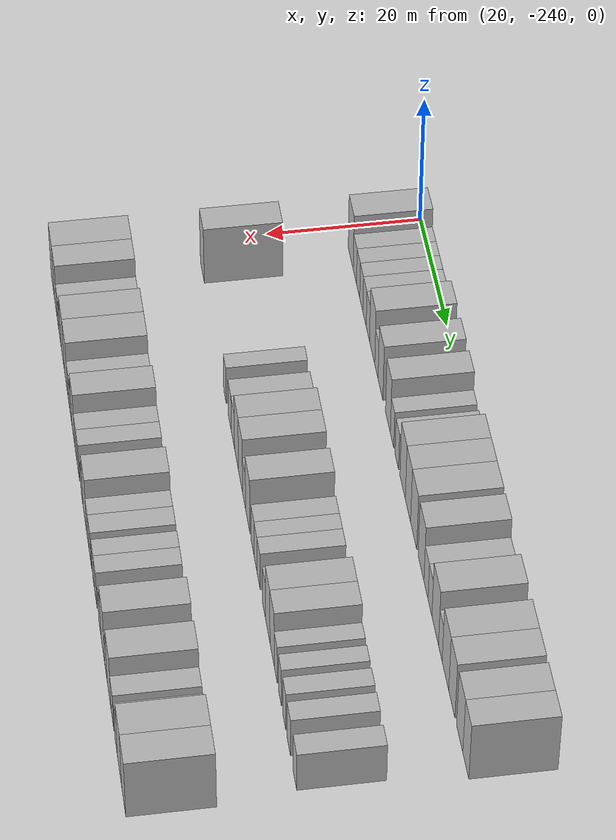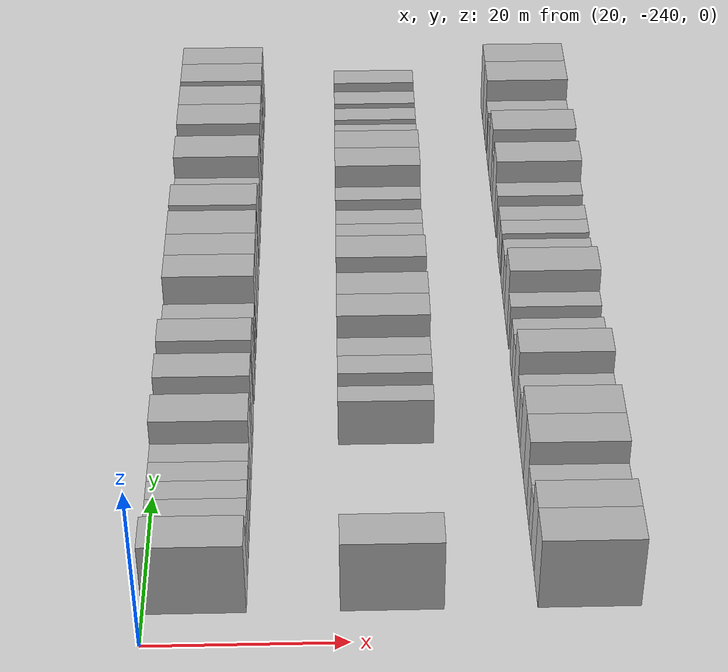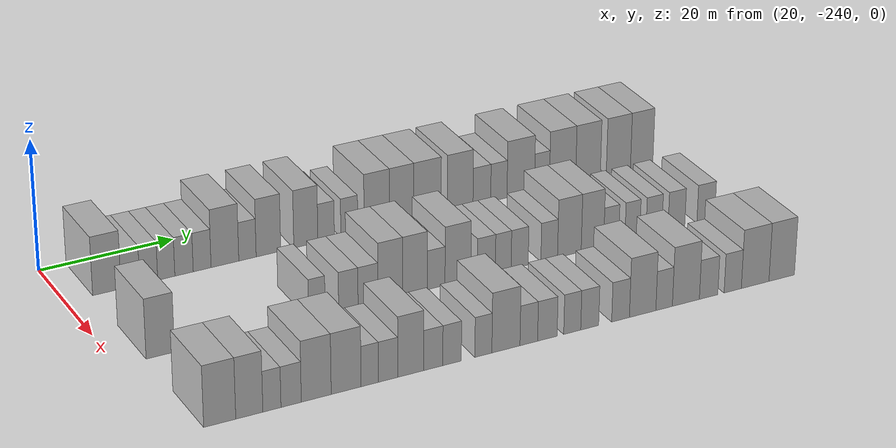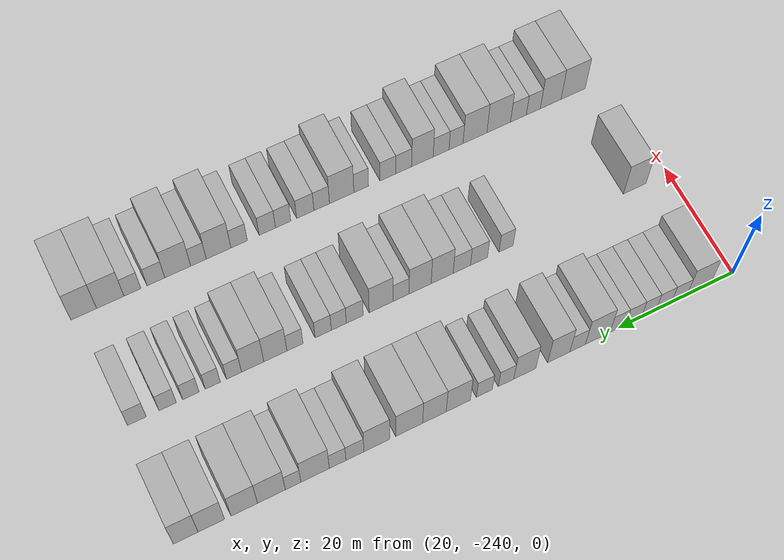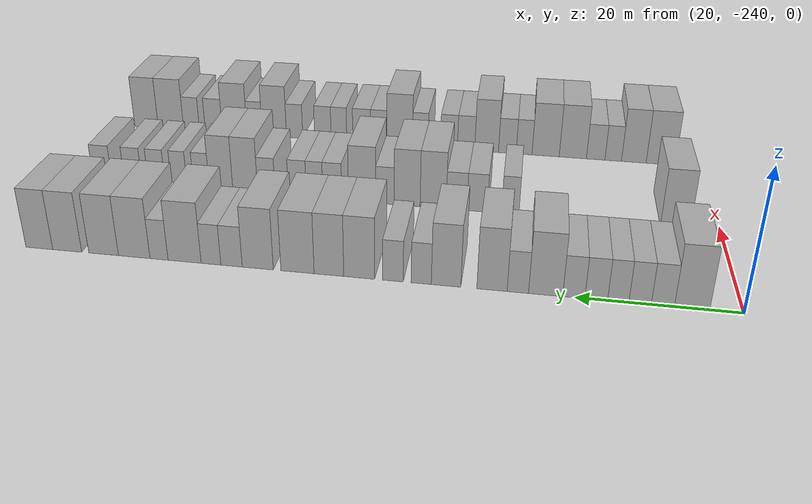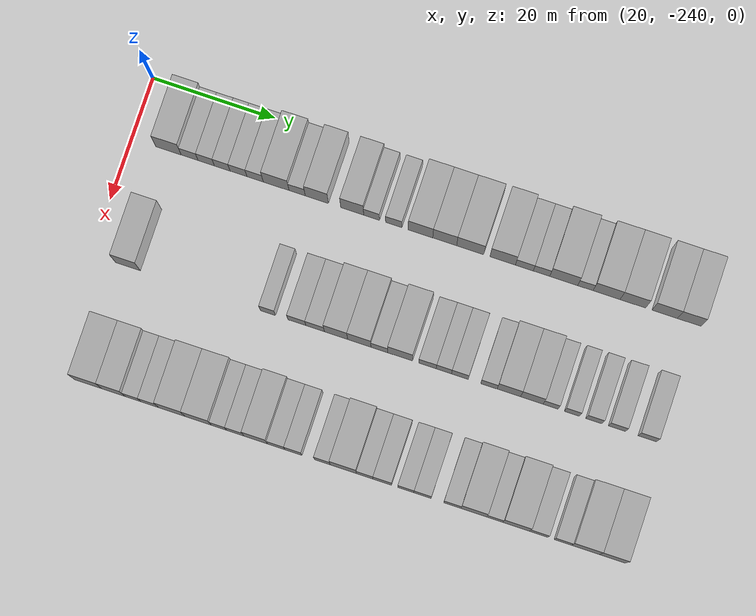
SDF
<sdf version="1.6">
 <world name="default">
  <model name="building_1">
   <static>1</static>
   <pose>25.0000 -233.9271 0 0.000000 0.000000 0.000000</pose>
   <link name="link">
    <pose>0 0 4.50 0 0 0</pose>
    <collision name="collision"><geometry><box><size>10.0000 4.1458 9.0000</size></box></geometry></collision>
    <visual name="visual">
     <cast_shadows>0</cast_shadows>
     <geometry><box><size>10.0000 4.1458 9.0000</size></box></geometry>
     <material>
      <script>
       <uri>model://HANNAS_wall/materials/scripts</uri>
       <uri>model://HANNAS_wall/materials/textures</uri>
       <name>vrc/HANNAS_wall</name>
      </script>
     </material>
    </visual>
   </link>
  </model>
  <model name="building_2">
   <static>1</static>
   <pose>25.0000 -230.4867 0 0.000000 0.000000 0.000000</pose>
   <link name="link">
    <pose>0 0 3.00 0 0 0</pose>
    <collision name="collision"><geometry><box><size>10.0000 2.7349 6.0000</size></box></geometry></collision>
    <visual name="visual">
     <cast_shadows>0</cast_shadows>
     <geometry><box><size>10.0000 2.7349 6.0000</size></box></geometry>
     <material>
      <script>
       <uri>model://HANNAS_wall/materials/scripts</uri>
       <uri>model://HANNAS_wall/materials/textures</uri>
       <name>vrc/HANNAS_wall</name>
      </script>
     </material>
    </visual>
   </link>
  </model>
  <model name="building_3">
   <static>1</static>
   <pose>25.0000 -227.7902 0 0.000000 0.000000 0.000000</pose>
   <link name="link">
    <pose>0 0 3.00 0 0 0</pose>
    <collision name="collision"><geometry><box><size>10.0000 2.6582 6.0000</size></box></geometry></collision>
    <visual name="visual">
     <cast_shadows>0</cast_shadows>
     <geometry><box><size>10.0000 2.6582 6.0000</size></box></geometry>
     <material>
      <script>
       <uri>model://HANNAS_wall/materials/scripts</uri>
       <uri>model://HANNAS_wall/materials/textures</uri>
       <name>vrc/HANNAS_wall</name>
      </script>
     </material>
    </visual>
   </link>
  </model>
  <model name="building_4">
   <static>1</static>
   <pose>25.0000 -225.1903 0 0.000000 0.000000 0.000000</pose>
   <link name="link">
    <pose>0 0 3.00 0 0 0</pose>
    <collision name="collision"><geometry><box><size>10.0000 2.5416 6.0000</size></box></geometry></collision>
    <visual name="visual">
     <cast_shadows>0</cast_shadows>
     <geometry><box><size>10.0000 2.5416 6.0000</size></box></geometry>
     <material>
      <script>
       <uri>model://HANNAS_wall/materials/scripts</uri>
       <uri>model://HANNAS_wall/materials/textures</uri>
       <name>vrc/HANNAS_wall</name>
      </script>
     </material>
    </visual>
   </link>
  </model>
  <model name="building_5">
   <static>1</static>
   <pose>25.0000 -222.5512 0 0.000000 0.000000 0.000000</pose>
   <link name="link">
    <pose>0 0 3.00 0 0 0</pose>
    <collision name="collision"><geometry><box><size>10.0000 2.7365 6.0000</size></box></geometry></collision>
    <visual name="visual">
     <cast_shadows>0</cast_shadows>
     <geometry><box><size>10.0000 2.7365 6.0000</size></box></geometry>
     <material>
      <script>
       <uri>model://HANNAS_wall/materials/scripts</uri>
       <uri>model://HANNAS_wall/materials/textures</uri>
       <name>vrc/HANNAS_wall</name>
      </script>
     </material>
    </visual>
   </link>
  </model>
  <model name="building_6">
   <static>1</static>
   <pose>25.0000 -219.8457 0 0.000000 0.000000 0.000000</pose>
   <link name="link">
    <pose>0 0 3.00 0 0 0</pose>
    <collision name="collision"><geometry><box><size>10.0000 2.6745 6.0000</size></box></geometry></collision>
    <visual name="visual">
     <cast_shadows>0</cast_shadows>
     <geometry><box><size>10.0000 2.6745 6.0000</size></box></geometry>
     <material>
      <script>
       <uri>model://HANNAS_wall/materials/scripts</uri>
       <uri>model://HANNAS_wall/materials/textures</uri>
       <name>vrc/HANNAS_wall</name>
      </script>
     </material>
    </visual>
   </link>
  </model>
  <model name="building_7">
   <static>1</static>
   <pose>25.0000 -216.4203 0 0.000000 0.000000 0.000000</pose>
   <link name="link">
    <pose>0 0 4.50 0 0 0</pose>
    <collision name="collision"><geometry><box><size>10.0000 4.1763 9.0000</size></box></geometry></collision>
    <visual name="visual">
     <cast_shadows>0</cast_shadows>
     <geometry><box><size>10.0000 4.1763 9.0000</size></box></geometry>
     <material>
      <script>
       <uri>model://HANNAS_wall/materials/scripts</uri>
       <uri>model://HANNAS_wall/materials/textures</uri>
       <name>vrc/HANNAS_wall</name>
      </script>
     </material>
    </visual>
   </link>
  </model>
  <model name="building_8">
   <static>1</static>
   <pose>25.0000 -213.0158 0 0.000000 0.000000 0.000000</pose>
   <link name="link">
    <pose>0 0 3.00 0 0 0</pose>
    <collision name="collision"><geometry><box><size>10.0000 2.6328 6.0000</size></box></geometry></collision>
    <visual name="visual">
     <cast_shadows>0</cast_shadows>
     <geometry><box><size>10.0000 2.6328 6.0000</size></box></geometry>
     <material>
      <script>
       <uri>model://HANNAS_wall/materials/scripts</uri>
       <uri>model://HANNAS_wall/materials/textures</uri>
       <name>vrc/HANNAS_wall</name>
      </script>
     </material>
    </visual>
   </link>
  </model>
  <model name="building_9">
   <static>1</static>
   <pose>25.0000 -209.8231 0 0.000000 0.000000 0.000000</pose>
   <link name="link">
    <pose>0 0 4.50 0 0 0</pose>
    <collision name="collision"><geometry><box><size>10.0000 3.7524 9.0000</size></box></geometry></collision>
    <visual name="visual">
     <cast_shadows>0</cast_shadows>
     <geometry><box><size>10.0000 3.7524 9.0000</size></box></geometry>
     <material>
      <script>
       <uri>model://HANNAS_wall/materials/scripts</uri>
       <uri>model://HANNAS_wall/materials/textures</uri>
       <name>vrc/HANNAS_wall</name>
      </script>
     </material>
    </visual>
   </link>
  </model>
  <model name="building_10">
   <static>1</static>
   <pose>25.0000 -204.0901 0 0.000000 0.000000 0.000000</pose>
   <link name="link">
    <pose>0 0 4.50 0 0 0</pose>
    <collision name="collision"><geometry><box><size>10.0000 3.7137 9.0000</size></box></geometry></collision>
    <visual name="visual">
     <cast_shadows>0</cast_shadows>
     <geometry><box><size>10.0000 3.7137 9.0000</size></box></geometry>
     <material>
      <script>
       <uri>model://HANNAS_wall/materials/scripts</uri>
       <uri>model://HANNAS_wall/materials/textures</uri>
       <name>vrc/HANNAS_wall</name>
      </script>
     </material>
    </visual>
   </link>
  </model>
  <model name="building_11">
   <static>1</static>
   <pose>25.0000 -200.9545 0 0.000000 0.000000 0.000000</pose>
   <link name="link">
    <pose>0 0 3.00 0 0 0</pose>
    <collision name="collision"><geometry><box><size>10.0000 2.5574 6.0000</size></box></geometry></collision>
    <visual name="visual">
     <cast_shadows>0</cast_shadows>
     <geometry><box><size>10.0000 2.5574 6.0000</size></box></geometry>
     <material>
      <script>
       <uri>model://HANNAS_wall/materials/scripts</uri>
       <uri>model://HANNAS_wall/materials/textures</uri>
       <name>vrc/HANNAS_wall</name>
      </script>
     </material>
    </visual>
   </link>
  </model>
  <model name="building_12">
   <static>1</static>
   <pose>25.0000 -197.3537 0 0.000000 0.000000 0.000000</pose>
   <link name="link">
    <pose>0 0 3.00 0 0 0</pose>
    <collision name="collision"><geometry><box><size>10.0000 2.6442 6.0000</size></box></geometry></collision>
    <visual name="visual">
     <cast_shadows>0</cast_shadows>
     <geometry><box><size>10.0000 2.6442 6.0000</size></box></geometry>
     <material>
      <script>
       <uri>model://HANNAS_wall/materials/scripts</uri>
       <uri>model://HANNAS_wall/materials/textures</uri>
       <name>vrc/HANNAS_wall</name>
      </script>
     </material>
    </visual>
   </link>
  </model>
  <model name="building_13">
   <static>1</static>
   <pose>25.0000 -193.0420 0 0.000000 0.000000 0.000000</pose>
   <link name="link">
    <pose>0 0 4.50 0 0 0</pose>
    <collision name="collision"><geometry><box><size>10.0000 3.9793 9.0000</size></box></geometry></collision>
    <visual name="visual">
     <cast_shadows>0</cast_shadows>
     <geometry><box><size>10.0000 3.9793 9.0000</size></box></geometry>
     <material>
      <script>
       <uri>model://HANNAS_wall/materials/scripts</uri>
       <uri>model://HANNAS_wall/materials/textures</uri>
       <name>vrc/HANNAS_wall</name>
      </script>
     </material>
    </visual>
   </link>
  </model>
  <model name="building_14">
   <static>1</static>
   <pose>25.0000 -189.1228 0 0.000000 0.000000 0.000000</pose>
   <link name="link">
    <pose>0 0 4.50 0 0 0</pose>
    <collision name="collision"><geometry><box><size>10.0000 3.8592 9.0000</size></box></geometry></collision>
    <visual name="visual">
     <cast_shadows>0</cast_shadows>
     <geometry><box><size>10.0000 3.8592 9.0000</size></box></geometry>
     <material>
      <script>
       <uri>model://HANNAS_wall/materials/scripts</uri>
       <uri>model://HANNAS_wall/materials/textures</uri>
       <name>vrc/HANNAS_wall</name>
      </script>
     </material>
    </visual>
   </link>
  </model>
  <model name="building_15">
   <static>1</static>
   <pose>25.0000 -185.0093 0 0.000000 0.000000 0.000000</pose>
   <link name="link">
    <pose>0 0 4.50 0 0 0</pose>
    <collision name="collision"><geometry><box><size>10.0000 4.3678 9.0000</size></box></geometry></collision>
    <visual name="visual">
     <cast_shadows>0</cast_shadows>
     <geometry><box><size>10.0000 4.3678 9.0000</size></box></geometry>
     <material>
      <script>
       <uri>model://HANNAS_wall/materials/scripts</uri>
       <uri>model://HANNAS_wall/materials/textures</uri>
       <name>vrc/HANNAS_wall</name>
      </script>
     </material>
    </visual>
   </link>
  </model>
  <model name="building_16">
   <static>1</static>
   <pose>25.0000 -179.7618 0 0.000000 0.000000 0.000000</pose>
   <link name="link">
    <pose>0 0 4.50 0 0 0</pose>
    <collision name="collision"><geometry><box><size>10.0000 4.1271 9.0000</size></box></geometry></collision>
    <visual name="visual">
     <cast_shadows>0</cast_shadows>
     <geometry><box><size>10.0000 4.1271 9.0000</size></box></geometry>
     <material>
      <script>
       <uri>model://HANNAS_wall/materials/scripts</uri>
       <uri>model://HANNAS_wall/materials/textures</uri>
       <name>vrc/HANNAS_wall</name>
      </script>
     </material>
    </visual>
   </link>
  </model>
  <model name="building_17">
   <static>1</static>
   <pose>25.0000 -176.2631 0 0.000000 0.000000 0.000000</pose>
   <link name="link">
    <pose>0 0 3.00 0 0 0</pose>
    <collision name="collision"><geometry><box><size>10.0000 2.8704 6.0000</size></box></geometry></collision>
    <visual name="visual">
     <cast_shadows>0</cast_shadows>
     <geometry><box><size>10.0000 2.8704 6.0000</size></box></geometry>
     <material>
      <script>
       <uri>model://HANNAS_wall/materials/scripts</uri>
       <uri>model://HANNAS_wall/materials/textures</uri>
       <name>vrc/HANNAS_wall</name>
      </script>
     </material>
    </visual>
   </link>
  </model>
  <model name="building_18">
   <static>1</static>
   <pose>25.0000 -173.5011 0 0.000000 0.000000 0.000000</pose>
   <link name="link">
    <pose>0 0 3.00 0 0 0</pose>
    <collision name="collision"><geometry><box><size>10.0000 2.6536 6.0000</size></box></geometry></collision>
    <visual name="visual">
     <cast_shadows>0</cast_shadows>
     <geometry><box><size>10.0000 2.6536 6.0000</size></box></geometry>
     <material>
      <script>
       <uri>model://HANNAS_wall/materials/scripts</uri>
       <uri>model://HANNAS_wall/materials/textures</uri>
       <name>vrc/HANNAS_wall</name>
      </script>
     </material>
    </visual>
   </link>
  </model>
  <model name="building_19">
   <static>1</static>
   <pose>25.0000 -169.9264 0 0.000000 0.000000 0.000000</pose>
   <link name="link">
    <pose>0 0 4.50 0 0 0</pose>
    <collision name="collision"><geometry><box><size>10.0000 4.4958 9.0000</size></box></geometry></collision>
    <visual name="visual">
     <cast_shadows>0</cast_shadows>
     <geometry><box><size>10.0000 4.4958 9.0000</size></box></geometry>
     <material>
      <script>
       <uri>model://HANNAS_wall/materials/scripts</uri>
       <uri>model://HANNAS_wall/materials/textures</uri>
       <name>vrc/HANNAS_wall</name>
      </script>
     </material>
    </visual>
   </link>
  </model>
  <model name="building_20">
   <static>1</static>
   <pose>25.0000 -166.4420 0 0.000000 0.000000 0.000000</pose>
   <link name="link">
    <pose>0 0 3.00 0 0 0</pose>
    <collision name="collision"><geometry><box><size>10.0000 2.4730 6.0000</size></box></geometry></collision>
    <visual name="visual">
     <cast_shadows>0</cast_shadows>
     <geometry><box><size>10.0000 2.4730 6.0000</size></box></geometry>
     <material>
      <script>
       <uri>model://HANNAS_wall/materials/scripts</uri>
       <uri>model://HANNAS_wall/materials/textures</uri>
       <name>vrc/HANNAS_wall</name>
      </script>
     </material>
    </visual>
   </link>
  </model>
  <model name="building_21">
   <static>1</static>
   <pose>25.0000 -163.0286 0 0.000000 0.000000 0.000000</pose>
   <link name="link">
    <pose>0 0 4.50 0 0 0</pose>
    <collision name="collision"><geometry><box><size>10.0000 4.3538 9.0000</size></box></geometry></collision>
    <visual name="visual">
     <cast_shadows>0</cast_shadows>
     <geometry><box><size>10.0000 4.3538 9.0000</size></box></geometry>
     <material>
      <script>
       <uri>model://HANNAS_wall/materials/scripts</uri>
       <uri>model://HANNAS_wall/materials/textures</uri>
       <name>vrc/HANNAS_wall</name>
      </script>
     </material>
    </visual>
   </link>
  </model>
  <model name="building_22">
   <static>1</static>
   <pose>25.0000 -158.7846 0 0.000000 0.000000 0.000000</pose>
   <link name="link">
    <pose>0 0 4.50 0 0 0</pose>
    <collision name="collision"><geometry><box><size>10.0000 4.1341 9.0000</size></box></geometry></collision>
    <visual name="visual">
     <cast_shadows>0</cast_shadows>
     <geometry><box><size>10.0000 4.1341 9.0000</size></box></geometry>
     <material>
      <script>
       <uri>model://HANNAS_wall/materials/scripts</uri>
       <uri>model://HANNAS_wall/materials/textures</uri>
       <name>vrc/HANNAS_wall</name>
      </script>
     </material>
    </visual>
   </link>
  </model>
  <model name="building_23">
   <static>1</static>
   <pose>25.0000 -153.6770 0 0.000000 0.000000 0.000000</pose>
   <link name="link">
    <pose>0 0 4.50 0 0 0</pose>
    <collision name="collision"><geometry><box><size>10.0000 4.0810 9.0000</size></box></geometry></collision>
    <visual name="visual">
     <cast_shadows>0</cast_shadows>
     <geometry><box><size>10.0000 4.0810 9.0000</size></box></geometry>
     <material>
      <script>
       <uri>model://HANNAS_wall/materials/scripts</uri>
       <uri>model://HANNAS_wall/materials/textures</uri>
       <name>vrc/HANNAS_wall</name>
      </script>
     </material>
    </visual>
   </link>
  </model>
  <model name="building_24">
   <static>1</static>
   <pose>25.0000 -149.7337 0 0.000000 0.000000 0.000000</pose>
   <link name="link">
    <pose>0 0 4.50 0 0 0</pose>
    <collision name="collision"><geometry><box><size>10.0000 3.8056 9.0000</size></box></geometry></collision>
    <visual name="visual">
     <cast_shadows>0</cast_shadows>
     <geometry><box><size>10.0000 3.8056 9.0000</size></box></geometry>
     <material>
      <script>
       <uri>model://HANNAS_wall/materials/scripts</uri>
       <uri>model://HANNAS_wall/materials/textures</uri>
       <name>vrc/HANNAS_wall</name>
      </script>
     </material>
    </visual>
   </link>
  </model>
  <model name="building_111">
   <static>1</static>
   <pose>44.0000 -233.9798 0 0.000000 0.000000 0.000000</pose>
   <link name="link">
    <pose>0 0 4.50 0 0 0</pose>
    <collision name="collision"><geometry><box><size>10.0000 4.0403 9.0000</size></box></geometry></collision>
    <visual name="visual">
     <cast_shadows>0</cast_shadows>
     <geometry><box><size>10.0000 4.0403 9.0000</size></box></geometry>
     <material>
      <script>
       <uri>model://HANNAS_wall/materials/scripts</uri>
       <uri>model://HANNAS_wall/materials/textures</uri>
       <name>vrc/HANNAS_wall</name>
      </script>
     </material>
    </visual>
   </link>
  </model>
  <model name="building_112">
   <static>1</static>
   <pose>44.0000 -211.3027 0 0.000000 0.000000 0.000000</pose>
   <link name="link">
    <pose>0 0 3.00 0 0 0</pose>
    <collision name="collision"><geometry><box><size>10.0000 2.4380 6.0000</size></box></geometry></collision>
    <visual name="visual">
     <cast_shadows>0</cast_shadows>
     <geometry><box><size>10.0000 2.4380 6.0000</size></box></geometry>
     <material>
      <script>
       <uri>model://HANNAS_wall/materials/scripts</uri>
       <uri>model://HANNAS_wall/materials/textures</uri>
       <name>vrc/HANNAS_wall</name>
      </script>
     </material>
    </visual>
   </link>
  </model>
  <model name="building_113">
   <static>1</static>
   <pose>44.0000 -206.6321 0 0.000000 0.000000 0.000000</pose>
   <link name="link">
    <pose>0 0 3.00 0 0 0</pose>
    <collision name="collision"><geometry><box><size>10.0000 2.9032 6.0000</size></box></geometry></collision>
    <visual name="visual">
     <cast_shadows>0</cast_shadows>
     <geometry><box><size>10.0000 2.9032 6.0000</size></box></geometry>
     <material>
      <script>
       <uri>model://HANNAS_wall/materials/scripts</uri>
       <uri>model://HANNAS_wall/materials/textures</uri>
       <name>vrc/HANNAS_wall</name>
      </script>
     </material>
    </visual>
   </link>
  </model>
  <model name="building_114">
   <static>1</static>
   <pose>44.0000 -203.6907 0 0.000000 0.000000 0.000000</pose>
   <link name="link">
    <pose>0 0 3.00 0 0 0</pose>
    <collision name="collision"><geometry><box><size>10.0000 2.9795 6.0000</size></box></geometry></collision>
    <visual name="visual">
     <cast_shadows>0</cast_shadows>
     <geometry><box><size>10.0000 2.9795 6.0000</size></box></geometry>
     <material>
      <script>
       <uri>model://HANNAS_wall/materials/scripts</uri>
       <uri>model://HANNAS_wall/materials/textures</uri>
       <name>vrc/HANNAS_wall</name>
      </script>
     </material>
    </visual>
   </link>
  </model>
  <model name="building_115">
   <static>1</static>
   <pose>44.0000 -200.3265 0 0.000000 0.000000 0.000000</pose>
   <link name="link">
    <pose>0 0 4.50 0 0 0</pose>
    <collision name="collision"><geometry><box><size>10.0000 3.7490 9.0000</size></box></geometry></collision>
    <visual name="visual">
     <cast_shadows>0</cast_shadows>
     <geometry><box><size>10.0000 3.7490 9.0000</size></box></geometry>
     <material>
      <script>
       <uri>model://HANNAS_wall/materials/scripts</uri>
       <uri>model://HANNAS_wall/materials/textures</uri>
       <name>vrc/HANNAS_wall</name>
      </script>
     </material>
    </visual>
   </link>
  </model>
  <model name="building_116">
   <static>1</static>
   <pose>44.0000 -196.5729 0 0.000000 0.000000 0.000000</pose>
   <link name="link">
    <pose>0 0 4.50 0 0 0</pose>
    <collision name="collision"><geometry><box><size>10.0000 3.7583 9.0000</size></box></geometry></collision>
    <visual name="visual">
     <cast_shadows>0</cast_shadows>
     <geometry><box><size>10.0000 3.7583 9.0000</size></box></geometry>
     <material>
      <script>
       <uri>model://HANNAS_wall/materials/scripts</uri>
       <uri>model://HANNAS_wall/materials/textures</uri>
       <name>vrc/HANNAS_wall</name>
      </script>
     </material>
    </visual>
   </link>
  </model>
  <model name="building_117">
   <static>1</static>
   <pose>44.0000 -193.3460 0 0.000000 0.000000 0.000000</pose>
   <link name="link">
    <pose>0 0 3.00 0 0 0</pose>
    <collision name="collision"><geometry><box><size>10.0000 2.6954 6.0000</size></box></geometry></collision>
    <visual name="visual">
     <cast_shadows>0</cast_shadows>
     <geometry><box><size>10.0000 2.6954 6.0000</size></box></geometry>
     <material>
      <script>
       <uri>model://HANNAS_wall/materials/scripts</uri>
       <uri>model://HANNAS_wall/materials/textures</uri>
       <name>vrc/HANNAS_wall</name>
      </script>
     </material>
    </visual>
   </link>
  </model>
  <model name="building_118">
   <static>1</static>
   <pose>44.0000 -190.0087 0 0.000000 0.000000 0.000000</pose>
   <link name="link">
    <pose>0 0 4.50 0 0 0</pose>
    <collision name="collision"><geometry><box><size>10.0000 3.9793 9.0000</size></box></geometry></collision>
    <visual name="visual">
     <cast_shadows>0</cast_shadows>
     <geometry><box><size>10.0000 3.9793 9.0000</size></box></geometry>
     <material>
      <script>
       <uri>model://HANNAS_wall/materials/scripts</uri>
       <uri>model://HANNAS_wall/materials/textures</uri>
       <name>vrc/HANNAS_wall</name>
      </script>
     </material>
    </visual>
   </link>
  </model>
  <model name="building_119">
   <static>1</static>
   <pose>44.0000 -185.6162 0 0.000000 0.000000 0.000000</pose>
   <link name="link">
    <pose>0 0 3.00 0 0 0</pose>
    <collision name="collision"><geometry><box><size>10.0000 2.8057 6.0000</size></box></geometry></collision>
    <visual name="visual">
     <cast_shadows>0</cast_shadows>
     <geometry><box><size>10.0000 2.8057 6.0000</size></box></geometry>
     <material>
      <script>
       <uri>model://HANNAS_wall/materials/scripts</uri>
       <uri>model://HANNAS_wall/materials/textures</uri>
       <name>vrc/HANNAS_wall</name>
      </script>
     </material>
    </visual>
   </link>
  </model>
  <model name="building_120">
   <static>1</static>
   <pose>44.0000 -182.9791 0 0.000000 0.000000 0.000000</pose>
   <link name="link">
    <pose>0 0 3.00 0 0 0</pose>
    <collision name="collision"><geometry><box><size>10.0000 2.4686 6.0000</size></box></geometry></collision>
    <visual name="visual">
     <cast_shadows>0</cast_shadows>
     <geometry><box><size>10.0000 2.4686 6.0000</size></box></geometry>
     <material>
      <script>
       <uri>model://HANNAS_wall/materials/scripts</uri>
       <uri>model://HANNAS_wall/materials/textures</uri>
       <name>vrc/HANNAS_wall</name>
      </script>
     </material>
    </visual>
   </link>
  </model>
  <model name="building_121">
   <static>1</static>
   <pose>44.0000 -180.4061 0 0.000000 0.000000 0.000000</pose>
   <link name="link">
    <pose>0 0 3.00 0 0 0</pose>
    <collision name="collision"><geometry><box><size>10.0000 2.6775 6.0000</size></box></geometry></collision>
    <visual name="visual">
     <cast_shadows>0</cast_shadows>
     <geometry><box><size>10.0000 2.6775 6.0000</size></box></geometry>
     <material>
      <script>
       <uri>model://HANNAS_wall/materials/scripts</uri>
       <uri>model://HANNAS_wall/materials/textures</uri>
       <name>vrc/HANNAS_wall</name>
      </script>
     </material>
    </visual>
   </link>
  </model>
  <model name="building_122">
   <static>1</static>
   <pose>44.0000 -175.7516 0 0.000000 0.000000 0.000000</pose>
   <link name="link">
    <pose>0 0 3.00 0 0 0</pose>
    <collision name="collision"><geometry><box><size>10.0000 2.6314 6.0000</size></box></geometry></collision>
    <visual name="visual">
     <cast_shadows>0</cast_shadows>
     <geometry><box><size>10.0000 2.6314 6.0000</size></box></geometry>
     <material>
      <script>
       <uri>model://HANNAS_wall/materials/scripts</uri>
       <uri>model://HANNAS_wall/materials/textures</uri>
       <name>vrc/HANNAS_wall</name>
      </script>
     </material>
    </visual>
   </link>
  </model>
  <model name="building_123">
   <static>1</static>
   <pose>44.0000 -172.5513 0 0.000000 0.000000 0.000000</pose>
   <link name="link">
    <pose>0 0 4.50 0 0 0</pose>
    <collision name="collision"><geometry><box><size>10.0000 3.7692 9.0000</size></box></geometry></collision>
    <visual name="visual">
     <cast_shadows>0</cast_shadows>
     <geometry><box><size>10.0000 3.7692 9.0000</size></box></geometry>
     <material>
      <script>
       <uri>model://HANNAS_wall/materials/scripts</uri>
       <uri>model://HANNAS_wall/materials/textures</uri>
       <name>vrc/HANNAS_wall</name>
      </script>
     </material>
    </visual>
   </link>
  </model>
  <model name="building_124">
   <static>1</static>
   <pose>44.0000 -168.8654 0 0.000000 0.000000 0.000000</pose>
   <link name="link">
    <pose>0 0 4.50 0 0 0</pose>
    <collision name="collision"><geometry><box><size>10.0000 3.6025 9.0000</size></box></geometry></collision>
    <visual name="visual">
     <cast_shadows>0</cast_shadows>
     <geometry><box><size>10.0000 3.6025 9.0000</size></box></geometry>
     <material>
      <script>
       <uri>model://HANNAS_wall/materials/scripts</uri>
       <uri>model://HANNAS_wall/materials/textures</uri>
       <name>vrc/HANNAS_wall</name>
      </script>
     </material>
    </visual>
   </link>
  </model>
  <model name="building_125">
   <static>1</static>
   <pose>44.0000 -165.8522 0 0.000000 0.000000 0.000000</pose>
   <link name="link">
    <pose>0 0 3.00 0 0 0</pose>
    <collision name="collision"><geometry><box><size>10.0000 2.4238 6.0000</size></box></geometry></collision>
    <visual name="visual">
     <cast_shadows>0</cast_shadows>
     <geometry><box><size>10.0000 2.4238 6.0000</size></box></geometry>
     <material>
      <script>
       <uri>model://HANNAS_wall/materials/scripts</uri>
       <uri>model://HANNAS_wall/materials/textures</uri>
       <name>vrc/HANNAS_wall</name>
      </script>
     </material>
    </visual>
   </link>
  </model>
  <model name="building_126">
   <static>1</static>
   <pose>44.0000 -162.4322 0 0.000000 0.000000 0.000000</pose>
   <link name="link">
    <pose>0 0 3.00 0 0 0</pose>
    <collision name="collision"><geometry><box><size>10.0000 2.4162 6.0000</size></box></geometry></collision>
    <visual name="visual">
     <cast_shadows>0</cast_shadows>
     <geometry><box><size>10.0000 2.4162 6.0000</size></box></geometry>
     <material>
      <script>
       <uri>model://HANNAS_wall/materials/scripts</uri>
       <uri>model://HANNAS_wall/materials/textures</uri>
       <name>vrc/HANNAS_wall</name>
      </script>
     </material>
    </visual>
   </link>
  </model>
  <model name="building_127">
   <static>1</static>
   <pose>44.0000 -158.9167 0 0.000000 0.000000 0.000000</pose>
   <link name="link">
    <pose>0 0 3.00 0 0 0</pose>
    <collision name="collision"><geometry><box><size>10.0000 2.6147 6.0000</size></box></geometry></collision>
    <visual name="visual">
     <cast_shadows>0</cast_shadows>
     <geometry><box><size>10.0000 2.6147 6.0000</size></box></geometry>
     <material>
      <script>
       <uri>model://HANNAS_wall/materials/scripts</uri>
       <uri>model://HANNAS_wall/materials/textures</uri>
       <name>vrc/HANNAS_wall</name>
      </script>
     </material>
    </visual>
   </link>
  </model>
  <model name="building_128">
   <static>1</static>
   <pose>44.0000 -155.2310 0 0.000000 0.000000 0.000000</pose>
   <link name="link">
    <pose>0 0 3.00 0 0 0</pose>
    <collision name="collision"><geometry><box><size>10.0000 2.7567 6.0000</size></box></geometry></collision>
    <visual name="visual">
     <cast_shadows>0</cast_shadows>
     <geometry><box><size>10.0000 2.7567 6.0000</size></box></geometry>
     <material>
      <script>
       <uri>model://HANNAS_wall/materials/scripts</uri>
       <uri>model://HANNAS_wall/materials/textures</uri>
       <name>vrc/HANNAS_wall</name>
      </script>
     </material>
    </visual>
   </link>
  </model>
  <model name="building_129">
   <static>1</static>
   <pose>44.0000 -150.3755 0 0.000000 0.000000 0.000000</pose>
   <link name="link">
    <pose>0 0 3.00 0 0 0</pose>
    <collision name="collision"><geometry><box><size>10.0000 2.9545 6.0000</size></box></geometry></collision>
    <visual name="visual">
     <cast_shadows>0</cast_shadows>
     <geometry><box><size>10.0000 2.9545 6.0000</size></box></geometry>
     <material>
      <script>
       <uri>model://HANNAS_wall/materials/scripts</uri>
       <uri>model://HANNAS_wall/materials/textures</uri>
       <name>vrc/HANNAS_wall</name>
      </script>
     </material>
    </visual>
   </link>
  </model>
  <model name="building_226">
   <static>1</static>
   <pose>63.0000 -233.7910 0 0.000000 0.000000 0.000000</pose>
   <link name="link">
    <pose>0 0 4.50 0 0 0</pose>
    <collision name="collision"><geometry><box><size>10.0000 4.4181 9.0000</size></box></geometry></collision>
    <visual name="visual">
     <cast_shadows>0</cast_shadows>
     <geometry><box><size>10.0000 4.4181 9.0000</size></box></geometry>
     <material>
      <script>
       <uri>model://HANNAS_wall/materials/scripts</uri>
       <uri>model://HANNAS_wall/materials/textures</uri>
       <name>vrc/HANNAS_wall</name>
      </script>
     </material>
    </visual>
   </link>
  </model>
  <model name="building_227">
   <static>1</static>
   <pose>63.0000 -229.7013 0 0.000000 0.000000 0.000000</pose>
   <link name="link">
    <pose>0 0 4.50 0 0 0</pose>
    <collision name="collision"><geometry><box><size>10.0000 3.7614 9.0000</size></box></geometry></collision>
    <visual name="visual">
     <cast_shadows>0</cast_shadows>
     <geometry><box><size>10.0000 3.7614 9.0000</size></box></geometry>
     <material>
      <script>
       <uri>model://HANNAS_wall/materials/scripts</uri>
       <uri>model://HANNAS_wall/materials/textures</uri>
       <name>vrc/HANNAS_wall</name>
      </script>
     </material>
    </visual>
   </link>
  </model>
  <model name="building_228">
   <static>1</static>
   <pose>63.0000 -226.5562 0 0.000000 0.000000 0.000000</pose>
   <link name="link">
    <pose>0 0 3.00 0 0 0</pose>
    <collision name="collision"><geometry><box><size>10.0000 2.5287 6.0000</size></box></geometry></collision>
    <visual name="visual">
     <cast_shadows>0</cast_shadows>
     <geometry><box><size>10.0000 2.5287 6.0000</size></box></geometry>
     <material>
      <script>
       <uri>model://HANNAS_wall/materials/scripts</uri>
       <uri>model://HANNAS_wall/materials/textures</uri>
       <name>vrc/HANNAS_wall</name>
      </script>
     </material>
    </visual>
   </link>
  </model>
  <model name="building_229">
   <static>1</static>
   <pose>63.0000 -223.8639 0 0.000000 0.000000 0.000000</pose>
   <link name="link">
    <pose>0 0 3.00 0 0 0</pose>
    <collision name="collision"><geometry><box><size>10.0000 2.8559 6.0000</size></box></geometry></collision>
    <visual name="visual">
     <cast_shadows>0</cast_shadows>
     <geometry><box><size>10.0000 2.8559 6.0000</size></box></geometry>
     <material>
      <script>
       <uri>model://HANNAS_wall/materials/scripts</uri>
       <uri>model://HANNAS_wall/materials/textures</uri>
       <name>vrc/HANNAS_wall</name>
      </script>
     </material>
    </visual>
   </link>
  </model>
  <model name="building_230">
   <static>1</static>
   <pose>63.0000 -220.3221 0 0.000000 0.000000 0.000000</pose>
   <link name="link">
    <pose>0 0 4.50 0 0 0</pose>
    <collision name="collision"><geometry><box><size>10.0000 4.2278 9.0000</size></box></geometry></collision>
    <visual name="visual">
     <cast_shadows>0</cast_shadows>
     <geometry><box><size>10.0000 4.2278 9.0000</size></box></geometry>
     <material>
      <script>
       <uri>model://HANNAS_wall/materials/scripts</uri>
       <uri>model://HANNAS_wall/materials/textures</uri>
       <name>vrc/HANNAS_wall</name>
      </script>
     </material>
    </visual>
   </link>
  </model>
  <model name="building_231">
   <static>1</static>
   <pose>63.0000 -216.0808 0 0.000000 0.000000 0.000000</pose>
   <link name="link">
    <pose>0 0 4.50 0 0 0</pose>
    <collision name="collision"><geometry><box><size>10.0000 4.2549 9.0000</size></box></geometry></collision>
    <visual name="visual">
     <cast_shadows>0</cast_shadows>
     <geometry><box><size>10.0000 4.2549 9.0000</size></box></geometry>
     <material>
      <script>
       <uri>model://HANNAS_wall/materials/scripts</uri>
       <uri>model://HANNAS_wall/materials/textures</uri>
       <name>vrc/HANNAS_wall</name>
      </script>
     </material>
    </visual>
   </link>
  </model>
  <model name="building_232">
   <static>1</static>
   <pose>63.0000 -212.7108 0 0.000000 0.000000 0.000000</pose>
   <link name="link">
    <pose>0 0 3.00 0 0 0</pose>
    <collision name="collision"><geometry><box><size>10.0000 2.4851 6.0000</size></box></geometry></collision>
    <visual name="visual">
     <cast_shadows>0</cast_shadows>
     <geometry><box><size>10.0000 2.4851 6.0000</size></box></geometry>
     <material>
      <script>
       <uri>model://HANNAS_wall/materials/scripts</uri>
       <uri>model://HANNAS_wall/materials/textures</uri>
       <name>vrc/HANNAS_wall</name>
      </script>
     </material>
    </visual>
   </link>
  </model>
  <model name="building_233">
   <static>1</static>
   <pose>63.0000 -210.0691 0 0.000000 0.000000 0.000000</pose>
   <link name="link">
    <pose>0 0 3.00 0 0 0</pose>
    <collision name="collision"><geometry><box><size>10.0000 2.7984 6.0000</size></box></geometry></collision>
    <visual name="visual">
     <cast_shadows>0</cast_shadows>
     <geometry><box><size>10.0000 2.7984 6.0000</size></box></geometry>
     <material>
      <script>
       <uri>model://HANNAS_wall/materials/scripts</uri>
       <uri>model://HANNAS_wall/materials/textures</uri>
       <name>vrc/HANNAS_wall</name>
      </script>
     </material>
    </visual>
   </link>
  </model>
  <model name="building_234">
   <static>1</static>
   <pose>63.0000 -206.7749 0 0.000000 0.000000 0.000000</pose>
   <link name="link">
    <pose>0 0 4.50 0 0 0</pose>
    <collision name="collision"><geometry><box><size>10.0000 3.7898 9.0000</size></box></geometry></collision>
    <visual name="visual">
     <cast_shadows>0</cast_shadows>
     <geometry><box><size>10.0000 3.7898 9.0000</size></box></geometry>
     <material>
      <script>
       <uri>model://HANNAS_wall/materials/scripts</uri>
       <uri>model://HANNAS_wall/materials/textures</uri>
       <name>vrc/HANNAS_wall</name>
      </script>
     </material>
    </visual>
   </link>
  </model>
  <model name="building_235">
   <static>1</static>
   <pose>63.0000 -203.4928 0 0.000000 0.000000 0.000000</pose>
   <link name="link">
    <pose>0 0 3.00 0 0 0</pose>
    <collision name="collision"><geometry><box><size>10.0000 2.7745 6.0000</size></box></geometry></collision>
    <visual name="visual">
     <cast_shadows>0</cast_shadows>
     <geometry><box><size>10.0000 2.7745 6.0000</size></box></geometry>
     <material>
      <script>
       <uri>model://HANNAS_wall/materials/scripts</uri>
       <uri>model://HANNAS_wall/materials/textures</uri>
       <name>vrc/HANNAS_wall</name>
      </script>
     </material>
    </visual>
   </link>
  </model>
  <model name="building_236">
   <static>1</static>
   <pose>63.0000 -200.7451 0 0.000000 0.000000 0.000000</pose>
   <link name="link">
    <pose>0 0 3.00 0 0 0</pose>
    <collision name="collision"><geometry><box><size>10.0000 2.7208 6.0000</size></box></geometry></collision>
    <visual name="visual">
     <cast_shadows>0</cast_shadows>
     <geometry><box><size>10.0000 2.7208 6.0000</size></box></geometry>
     <material>
      <script>
       <uri>model://HANNAS_wall/materials/scripts</uri>
       <uri>model://HANNAS_wall/materials/textures</uri>
       <name>vrc/HANNAS_wall</name>
      </script>
     </material>
    </visual>
   </link>
  </model>
  <model name="building_237">
   <static>1</static>
   <pose>63.0000 -196.1221 0 0.000000 0.000000 0.000000</pose>
   <link name="link">
    <pose>0 0 3.00 0 0 0</pose>
    <collision name="collision"><geometry><box><size>10.0000 2.5253 6.0000</size></box></geometry></collision>
    <visual name="visual">
     <cast_shadows>0</cast_shadows>
     <geometry><box><size>10.0000 2.5253 6.0000</size></box></geometry>
     <material>
      <script>
       <uri>model://HANNAS_wall/materials/scripts</uri>
       <uri>model://HANNAS_wall/materials/textures</uri>
       <name>vrc/HANNAS_wall</name>
      </script>
     </material>
    </visual>
   </link>
  </model>
  <model name="building_238">
   <static>1</static>
   <pose>63.0000 -192.7614 0 0.000000 0.000000 0.000000</pose>
   <link name="link">
    <pose>0 0 4.50 0 0 0</pose>
    <collision name="collision"><geometry><box><size>10.0000 4.1959 9.0000</size></box></geometry></collision>
    <visual name="visual">
     <cast_shadows>0</cast_shadows>
     <geometry><box><size>10.0000 4.1959 9.0000</size></box></geometry>
     <material>
      <script>
       <uri>model://HANNAS_wall/materials/scripts</uri>
       <uri>model://HANNAS_wall/materials/textures</uri>
       <name>vrc/HANNAS_wall</name>
      </script>
     </material>
    </visual>
   </link>
  </model>
  <model name="building_239">
   <static>1</static>
   <pose>63.0000 -189.3387 0 0.000000 0.000000 0.000000</pose>
   <link name="link">
    <pose>0 0 3.00 0 0 0</pose>
    <collision name="collision"><geometry><box><size>10.0000 2.6496 6.0000</size></box></geometry></collision>
    <visual name="visual">
     <cast_shadows>0</cast_shadows>
     <geometry><box><size>10.0000 2.6496 6.0000</size></box></geometry>
     <material>
      <script>
       <uri>model://HANNAS_wall/materials/scripts</uri>
       <uri>model://HANNAS_wall/materials/textures</uri>
       <name>vrc/HANNAS_wall</name>
      </script>
     </material>
    </visual>
   </link>
  </model>
  <model name="building_240">
   <static>1</static>
   <pose>63.0000 -186.5387 0 0.000000 0.000000 0.000000</pose>
   <link name="link">
    <pose>0 0 3.00 0 0 0</pose>
    <collision name="collision"><geometry><box><size>10.0000 2.9504 6.0000</size></box></geometry></collision>
    <visual name="visual">
     <cast_shadows>0</cast_shadows>
     <geometry><box><size>10.0000 2.9504 6.0000</size></box></geometry>
     <material>
      <script>
       <uri>model://HANNAS_wall/materials/scripts</uri>
       <uri>model://HANNAS_wall/materials/textures</uri>
       <name>vrc/HANNAS_wall</name>
      </script>
     </material>
    </visual>
   </link>
  </model>
  <model name="building_241">
   <static>1</static>
   <pose>63.0000 -182.7668 0 0.000000 0.000000 0.000000</pose>
   <link name="link">
    <pose>0 0 3.00 0 0 0</pose>
    <collision name="collision"><geometry><box><size>10.0000 2.5934 6.0000</size></box></geometry></collision>
    <visual name="visual">
     <cast_shadows>0</cast_shadows>
     <geometry><box><size>10.0000 2.5934 6.0000</size></box></geometry>
     <material>
      <script>
       <uri>model://HANNAS_wall/materials/scripts</uri>
       <uri>model://HANNAS_wall/materials/textures</uri>
       <name>vrc/HANNAS_wall</name>
      </script>
     </material>
    </visual>
   </link>
  </model>
  <model name="building_242">
   <static>1</static>
   <pose>63.0000 -180.0996 0 0.000000 0.000000 0.000000</pose>
   <link name="link">
    <pose>0 0 3.00 0 0 0</pose>
    <collision name="collision"><geometry><box><size>10.0000 2.7410 6.0000</size></box></geometry></collision>
    <visual name="visual">
     <cast_shadows>0</cast_shadows>
     <geometry><box><size>10.0000 2.7410 6.0000</size></box></geometry>
     <material>
      <script>
       <uri>model://HANNAS_wall/materials/scripts</uri>
       <uri>model://HANNAS_wall/materials/textures</uri>
       <name>vrc/HANNAS_wall</name>
      </script>
     </material>
    </visual>
   </link>
  </model>
  <model name="building_243">
   <static>1</static>
   <pose>63.0000 -175.3584 0 0.000000 0.000000 0.000000</pose>
   <link name="link">
    <pose>0 0 3.00 0 0 0</pose>
    <collision name="collision"><geometry><box><size>10.0000 2.7413 6.0000</size></box></geometry></collision>
    <visual name="visual">
     <cast_shadows>0</cast_shadows>
     <geometry><box><size>10.0000 2.7413 6.0000</size></box></geometry>
     <material>
      <script>
       <uri>model://HANNAS_wall/materials/scripts</uri>
       <uri>model://HANNAS_wall/materials/textures</uri>
       <name>vrc/HANNAS_wall</name>
      </script>
     </material>
    </visual>
   </link>
  </model>
  <model name="building_244">
   <static>1</static>
   <pose>63.0000 -171.9318 0 0.000000 0.000000 0.000000</pose>
   <link name="link">
    <pose>0 0 4.50 0 0 0</pose>
    <collision name="collision"><geometry><box><size>10.0000 4.1120 9.0000</size></box></geometry></collision>
    <visual name="visual">
     <cast_shadows>0</cast_shadows>
     <geometry><box><size>10.0000 4.1120 9.0000</size></box></geometry>
     <material>
      <script>
       <uri>model://HANNAS_wall/materials/scripts</uri>
       <uri>model://HANNAS_wall/materials/textures</uri>
       <name>vrc/HANNAS_wall</name>
      </script>
     </material>
    </visual>
   </link>
  </model>
  <model name="building_245">
   <static>1</static>
   <pose>63.0000 -168.5814 0 0.000000 0.000000 0.000000</pose>
   <link name="link">
    <pose>0 0 3.00 0 0 0</pose>
    <collision name="collision"><geometry><box><size>10.0000 2.5889 6.0000</size></box></geometry></collision>
    <visual name="visual">
     <cast_shadows>0</cast_shadows>
     <geometry><box><size>10.0000 2.5889 6.0000</size></box></geometry>
     <material>
      <script>
       <uri>model://HANNAS_wall/materials/scripts</uri>
       <uri>model://HANNAS_wall/materials/textures</uri>
       <name>vrc/HANNAS_wall</name>
      </script>
     </material>
    </visual>
   </link>
  </model>
  <model name="building_246">
   <static>1</static>
   <pose>63.0000 -165.1602 0 0.000000 0.000000 0.000000</pose>
   <link name="link">
    <pose>0 0 4.50 0 0 0</pose>
    <collision name="collision"><geometry><box><size>10.0000 4.2535 9.0000</size></box></geometry></collision>
    <visual name="visual">
     <cast_shadows>0</cast_shadows>
     <geometry><box><size>10.0000 4.2535 9.0000</size></box></geometry>
     <material>
      <script>
       <uri>model://HANNAS_wall/materials/scripts</uri>
       <uri>model://HANNAS_wall/materials/textures</uri>
       <name>vrc/HANNAS_wall</name>
      </script>
     </material>
    </visual>
   </link>
  </model>
  <model name="building_247">
   <static>1</static>
   <pose>63.0000 -161.5724 0 0.000000 0.000000 0.000000</pose>
   <link name="link">
    <pose>0 0 3.00 0 0 0</pose>
    <collision name="collision"><geometry><box><size>10.0000 2.9221 6.0000</size></box></geometry></collision>
    <visual name="visual">
     <cast_shadows>0</cast_shadows>
     <geometry><box><size>10.0000 2.9221 6.0000</size></box></geometry>
     <material>
      <script>
       <uri>model://HANNAS_wall/materials/scripts</uri>
       <uri>model://HANNAS_wall/materials/textures</uri>
       <name>vrc/HANNAS_wall</name>
      </script>
     </material>
    </visual>
   </link>
  </model>
  <model name="building_248">
   <static>1</static>
   <pose>63.0000 -157.7363 0 0.000000 0.000000 0.000000</pose>
   <link name="link">
    <pose>0 0 3.00 0 0 0</pose>
    <collision name="collision"><geometry><box><size>10.0000 2.7502 6.0000</size></box></geometry></collision>
    <visual name="visual">
     <cast_shadows>0</cast_shadows>
     <geometry><box><size>10.0000 2.7502 6.0000</size></box></geometry>
     <material>
      <script>
       <uri>model://HANNAS_wall/materials/scripts</uri>
       <uri>model://HANNAS_wall/materials/textures</uri>
       <name>vrc/HANNAS_wall</name>
      </script>
     </material>
    </visual>
   </link>
  </model>
  <model name="building_249">
   <static>1</static>
   <pose>63.0000 -154.1404 0 0.000000 0.000000 0.000000</pose>
   <link name="link">
    <pose>0 0 4.50 0 0 0</pose>
    <collision name="collision"><geometry><box><size>10.0000 4.4417 9.0000</size></box></geometry></collision>
    <visual name="visual">
     <cast_shadows>0</cast_shadows>
     <geometry><box><size>10.0000 4.4417 9.0000</size></box></geometry>
     <material>
      <script>
       <uri>model://HANNAS_wall/materials/scripts</uri>
       <uri>model://HANNAS_wall/materials/textures</uri>
       <name>vrc/HANNAS_wall</name>
      </script>
     </material>
    </visual>
   </link>
  </model>
  <model name="building_250">
   <static>1</static>
   <pose>63.0000 -149.8556 0 0.000000 0.000000 0.000000</pose>
   <link name="link">
    <pose>0 0 4.50 0 0 0</pose>
    <collision name="collision"><geometry><box><size>10.0000 4.1279 9.0000</size></box></geometry></collision>
    <visual name="visual">
     <cast_shadows>0</cast_shadows>
     <geometry><box><size>10.0000 4.1279 9.0000</size></box></geometry>
     <material>
      <script>
       <uri>model://HANNAS_wall/materials/scripts</uri>
       <uri>model://HANNAS_wall/materials/textures</uri>
       <name>vrc/HANNAS_wall</name>
      </script>
     </material>
    </visual>
   </link>
  </model>
 </world>
</sdf>
